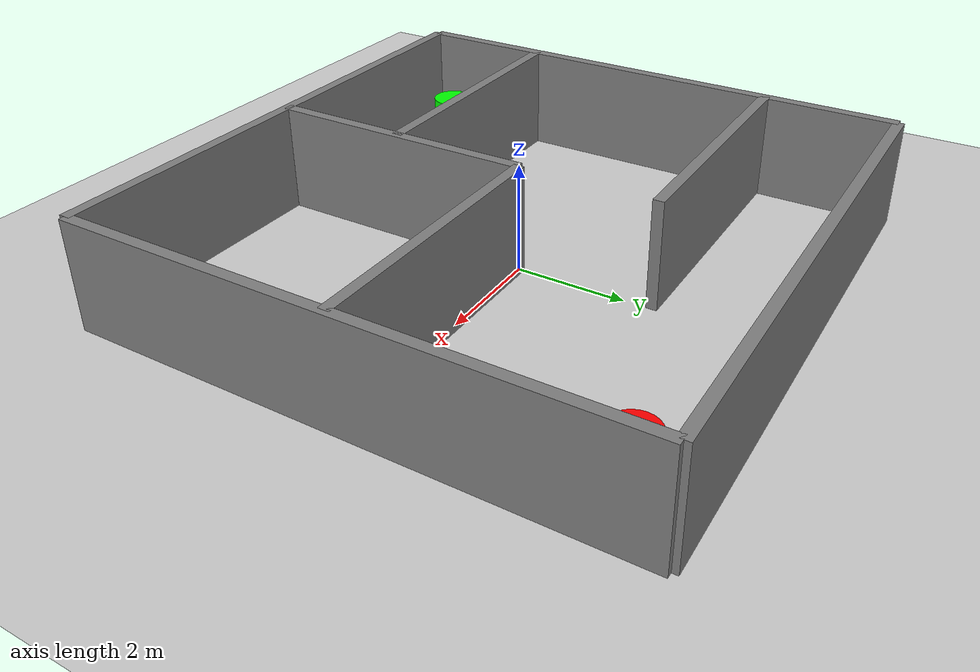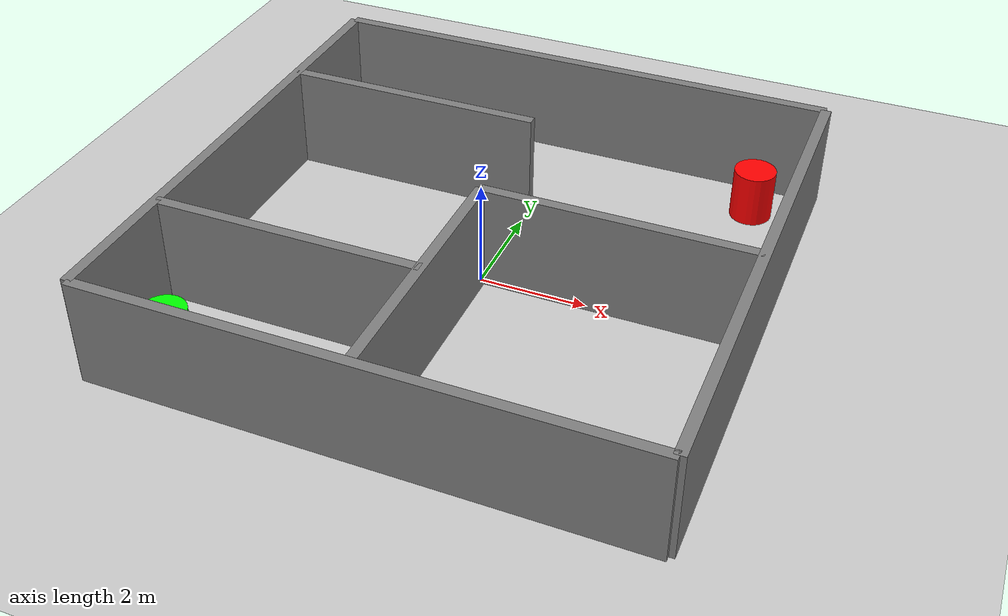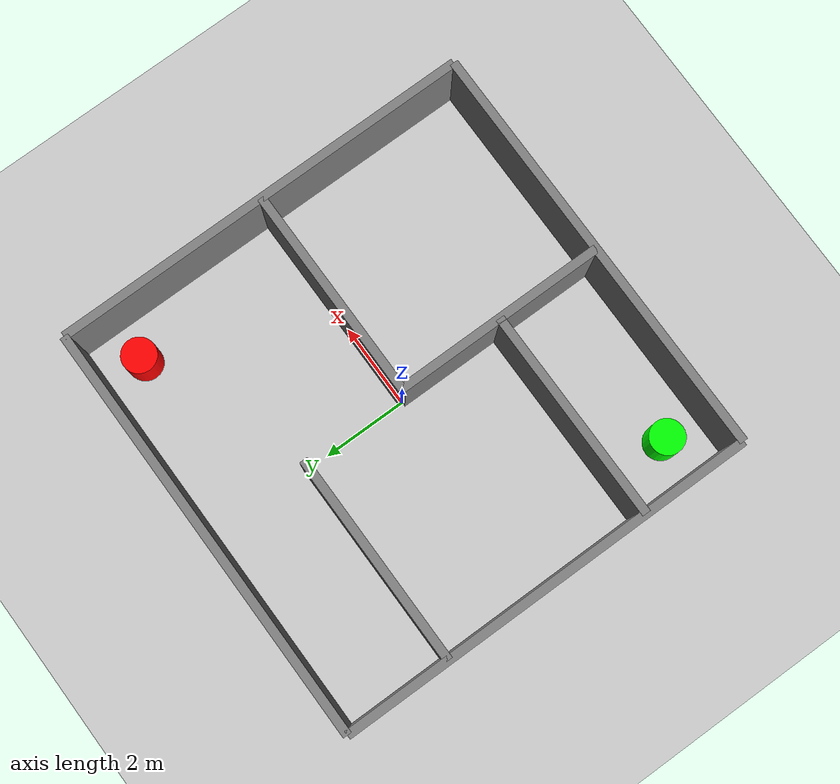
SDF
<?xml version="1.0" ?>
<sdf version="1.6">
  <world name="maze_world">
    <!-- 添加地面 -->
    <include>
      <uri>model://ground_plane</uri>
    </include>

    <!-- 添加太阳光 -->
    <include>
      <uri>model://sun</uri>
    </include>

    <!-- 迷宫边界墙壁 -->
    <!-- 外墙 - 北 -->
    <model name="north_wall">
      <static>true</static>
      <pose>0 5 1 0 0 0</pose>
      <link name="link">
        <visual name="visual">
          <geometry>
            <box>
              <size>10 0.2 2</size>
            </box>
          </geometry>
          <material>
            <ambient>0.5 0.5 0.5 1</ambient>
            <diffuse>0.5 0.5 0.5 1</diffuse>
          </material>
        </visual>
        <collision name="collision">
          <geometry>
            <box>
              <size>10 0.2 2</size>
            </box>
          </geometry>
        </collision>
      </link>
    </model>

    <!-- 外墙 - 南 -->
    <model name="south_wall">
      <static>true</static>
      <pose>0 -5 1 0 0 0</pose>
      <link name="link">
        <visual name="visual">
          <geometry>
            <box>
              <size>10 0.2 2</size>
            </box>
          </geometry>
          <material>
            <ambient>0.5 0.5 0.5 1</ambient>
            <diffuse>0.5 0.5 0.5 1</diffuse>
          </material>
        </visual>
        <collision name="collision">
          <geometry>
            <box>
              <size>10 0.2 2</size>
            </box>
          </geometry>
        </collision>
      </link>
    </model>

    <!-- 外墙 - 东 -->
    <model name="east_wall">
      <static>true</static>
      <pose>5 0 1 0 0 0</pose>
      <link name="link">
        <visual name="visual">
          <geometry>
            <box>
              <size>0.2 10 2</size>
            </box>
          </geometry>
          <material>
            <ambient>0.5 0.5 0.5 1</ambient>
            <diffuse>0.5 0.5 0.5 1</diffuse>
          </material>
        </visual>
        <collision name="collision">
          <geometry>
            <box>
              <size>0.2 10 2</size>
            </box>
          </geometry>
        </collision>
      </link>
    </model>

    <!-- 外墙 - 西 -->
    <model name="west_wall">
      <static>true</static>
      <pose>-5 0 1 0 0 0</pose>
      <link name="link">
        <visual name="visual">
          <geometry>
            <box>
              <size>0.2 10 2</size>
            </box>
          </geometry>
          <material>
            <ambient>0.5 0.5 0.5 1</ambient>
            <diffuse>0.5 0.5 0.5 1</diffuse>
          </material>
        </visual>
        <collision name="collision">
          <geometry>
            <box>
              <size>0.2 10 2</size>
            </box>
          </geometry>
        </collision>
      </link>
    </model>

    <!-- 迷宫内部墙壁 -->
    <!-- 水平墙1 -->
    <model name="wall_h1">
      <static>true</static>
      <pose>-2.5 2.5 1 0 0 0</pose>
      <link name="link">
        <visual name="visual">
          <geometry>
            <box>
              <size>5 0.2 2</size>
            </box>
          </geometry>
          <material>
            <ambient>0.5 0.5 0.5 1</ambient>
            <diffuse>0.5 0.5 0.5 1</diffuse>
          </material>
        </visual>
        <collision name="collision">
          <geometry>
            <box>
              <size>5 0.2 2</size>
            </box>
          </geometry>
        </collision>
      </link>
    </model>

    <!-- 水平墙2 -->
    <model name="wall_h2">
      <static>true</static>
      <pose>2.5 0 1 0 0 0</pose>
      <link name="link">
        <visual name="visual">
          <geometry>
            <box>
              <size>5 0.2 2</size>
            </box>
          </geometry>
          <material>
            <ambient>0.5 0.5 0.5 1</ambient>
            <diffuse>0.5 0.5 0.5 1</diffuse>
          </material>
        </visual>
        <collision name="collision">
          <geometry>
            <box>
              <size>5 0.2 2</size>
            </box>
          </geometry>
        </collision>
      </link>
    </model>

    <!-- 水平墙3 -->
    <model name="wall_h3">
      <static>true</static>
      <pose>-2.5 -2.5 1 0 0 0</pose>
      <link name="link">
        <visual name="visual">
          <geometry>
            <box>
              <size>5 0.2 2</size>
            </box>
          </geometry>
          <material>
            <ambient>0.5 0.5 0.5 1</ambient>
            <diffuse>0.5 0.5 0.5 1</diffuse>
          </material>
        </visual>
        <collision name="collision">
          <geometry>
            <box>
              <size>5 0.2 2</size>
            </box>
          </geometry>
        </collision>
      </link>
    </model>

    <!-- 垂直墙1 -->
    <model name="wall_v1">
      <static>true</static>
      <pose>0 -2.5 1 0 0 0</pose>
      <link name="link">
        <visual name="visual">
          <geometry>
            <box>
              <size>0.2 5 2</size>
            </box>
          </geometry>
          <material>
            <ambient>0.5 0.5 0.5 1</ambient>
            <diffuse>0.5 0.5 0.5 1</diffuse>
          </material>
        </visual>
        <collision name="collision">
          <geometry>
            <box>
              <size>0.2 5 2</size>
            </box>
          </geometry>
        </collision>
      </link>
    </model>

    <!-- 起点标记 - 绿色圆柱体 -->
    <model name="start_marker">
      <static>true</static>
      <pose>-4 -4 0.5 0 0 0</pose>
      <link name="link">
        <visual name="visual">
          <geometry>
            <cylinder>
              <radius>0.4</radius>
              <length>1</length>
            </cylinder>
          </geometry>
          <material>
            <ambient>0 1 0 1</ambient>
            <diffuse>0 1 0 1</diffuse>
            <specular>0.1 0.1 0.1 1</specular>
            <emissive>0 0.5 0 1</emissive>
          </material>
        </visual>
        <collision name="collision">
          <geometry>
            <cylinder>
              <radius>0.4</radius>
              <length>1</length>
            </cylinder>
          </geometry>
        </collision>
      </link>
    </model>

    <!-- 终点标记 - 红色圆柱体 -->
    <model name="goal_marker">
      <static>true</static>
      <pose>4 4 0.5 0 0 0</pose>
      <link name="link">
        <visual name="visual">
          <geometry>
            <cylinder>
              <radius>0.4</radius>
              <length>1</length>
            </cylinder>
          </geometry>
          <material>
            <ambient>1 0 0 1</ambient>
            <diffuse>1 0 0 1</diffuse>
            <specular>0.1 0.1 0.1 1</specular>
            <emissive>0.5 0 0 1</emissive>
          </material>
        </visual>
        <collision name="collision">
          <geometry>
            <cylinder>
              <radius>0.4</radius>
              <length>1</length>
            </cylinder>
          </geometry>
        </collision>
      </link>
    </model>

    <!-- 添加相机视角 -->
    <gui fullscreen='0'>
      <camera name='user_camera'>
        <pose>0 0 15 0 1.5707 0</pose>
        <view_controller>orbit</view_controller>
      </camera>
    </gui>

    <!-- 环境光照设置 -->
    <scene>
      <ambient>0.6 0.6 0.6 1</ambient>
      <background>0.7 0.7 0.7 1</background>
      <shadows>true</shadows>
    </scene>

    <!-- 物理引擎设置 -->
    <physics type="ode">
      <real_time_update_rate>1000</real_time_update_rate>
      <max_step_size>0.001</max_step_size>
      <real_time_factor>1</real_time_factor>
      <ode>
        <solver>
          <type>quick</type>
          <iters>150</iters>
          <precon_iters>0</precon_iters>
          <sor>1.400000</sor>
          <use_dynamic_moi_rescaling>1</use_dynamic_moi_rescaling>
        </solver>
        <constraints>
          <cfm>0.00001</cfm>
          <erp>0.2</erp>
          <contact_max_correcting_vel>2000.000000</contact_max_correcting_vel>
          <contact_surface_layer>0.01000</contact_surface_layer>
        </constraints>
      </ode>
    </physics>
  </world>
</sdf>
